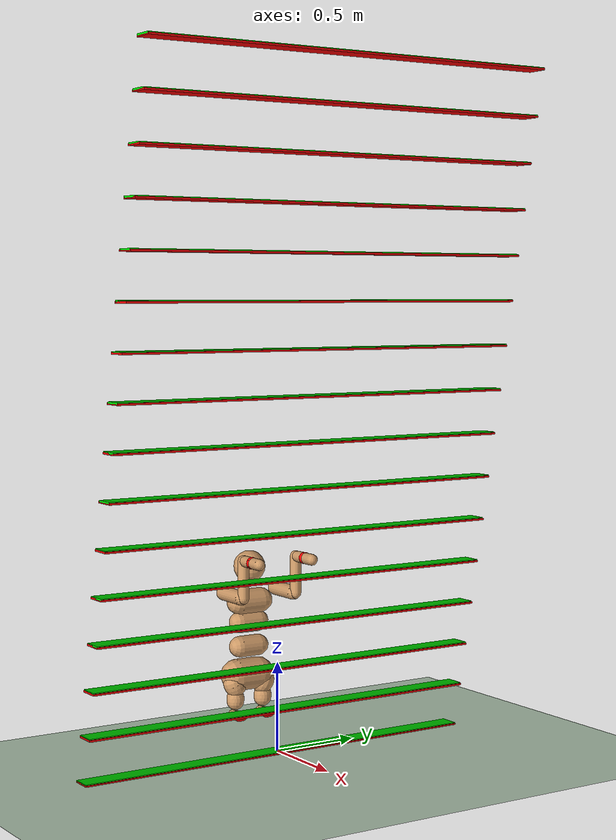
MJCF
<?xml version='1.0' encoding='utf-8'?>
<mujoco model="humanoid">
	<compiler angle="degree" inertiafromgeom="true" />
	<default>
		<joint armature="1" damping="1" limited="true" />
		<geom conaffinity="1" condim="1" contype="1" margin="0.001" material="geom" rgba="0.8 0.6 .4 1" />
		<motor ctrllimited="true" ctrlrange="-.4 .4" />
	</default>
	<option integrator="RK4" iterations="50" solver="PGS" timestep="0.003" gravity="0 0 -9.81" />
	<size nkey="5" nuser_geom="1" />
	<visual>
		<map fogend="5" fogstart="3" />
	</visual>
	<asset>
		<texture builtin="gradient" height="100" rgb1=".4 .5 .6" rgb2="0 0 0" type="skybox" width="100" />
		<texture builtin="flat" height="1278" mark="cross" markrgb="1 1 1" name="texgeom" random="0.01" rgb1="0.8 0.6 0.4" rgb2="0.8 0.6 0.4" type="cube" width="127" />
		<texture builtin="checker" height="100" name="texplane" random="0.01" rgb1="0 0 0" rgb2="0.8 0.8 0.8" type="2d" width="100" />
		<material name="MatPlane" reflectance="0.5" shininess="1" specular="1" texrepeat="60 60" texture="texplane" />
		<material name="geom" texture="texgeom" texuniform="true" />
	</asset>
	<worldbody>
		<light cutoff="100" diffuse="1 1 1" dir="-0 0 -1.3" directional="true" exponent="1" pos="0 0 1.3" specular=".1 .1 .1" />
		<camera name="track_3" mode="fixed" pos="6.5 0 11.5" xyaxes="1 0 0 0 1 0" />
		<camera name="staris_camera" mode="fixed" pos="-1 -6 2.6" xyaxes="0.88 -0.5 0 0.1 0.1 0.99" />
		<geom condim="3" friction="1 .1 .1" material="MatPlane" name="flatfloor" pos="0 0 0" rgba="0.8 0.9 0.8 1" size="20 20 2" type="plane" />
		<geom name="ladder1" type="box" size="0.054 1.2 0.005" pos="0.0 0 0.0025" rgba="0 .9 0 1" condim="3" friction="1 .1 .1" />
		<geom name="bottom1" type="box" size="0.06 1.2 0.005" pos="0.0 0 -0.0025" rgba="0.9 0 0 1" condim="3" friction="1 .1 .1" />
		<geom name="ladder2" type="box" size="0.054 1.2 0.005" pos="0.05 0 0.2525" rgba="0 .9 0 1" condim="3" friction="1 .1 .1" />
		<geom name="bottom2" type="box" size="0.06 1.2 0.005" pos="0.05 0 0.2475" rgba="0.9 0 0 1" condim="3" friction="1 .1 .1" />
		<geom name="ladder3" type="box" size="0.054 1.2 0.005" pos="0.1 0 0.5025" rgba="0 .9 0 1" condim="3" friction="1 .1 .1" />
		<geom name="bottom3" type="box" size="0.06 1.2 0.005" pos="0.1 0 0.4975" rgba="0.9 0 0 1" condim="3" friction="1 .1 .1" />
		<geom name="ladder4" type="box" size="0.054 1.2 0.005" pos="0.15 0 0.7525" rgba="0 .9 0 1" condim="3" friction="1 .1 .1" />
		<geom name="bottom4" type="box" size="0.06 1.2 0.005" pos="0.15 0 0.7475" rgba="0.9 0 0 1" condim="3" friction="1 .1 .1" />
		<geom name="ladder5" type="box" size="0.054 1.2 0.005" pos="0.2 0 1.0025" rgba="0 .9 0 1" condim="3" friction="1 .1 .1" />
		<geom name="bottom5" type="box" size="0.06 1.2 0.005" pos="0.2 0 0.9975" rgba="0.9 0 0 1" condim="3" friction="1 .1 .1" />
		<geom name="ladder6" type="box" size="0.054 1.2 0.005" pos="0.25 0 1.2525" rgba="0 .9 0 1" condim="3" friction="1 .1 .1" />
		<geom name="bottom6" type="box" size="0.06 1.2 0.005" pos="0.25 0 1.2475" rgba="0.9 0 0 1" condim="3" friction="1 .1 .1" />
		<geom name="ladder7" type="box" size="0.054 1.2 0.005" pos="0.3 0 1.5025" rgba="0 .9 0 1" condim="3" friction="1 .1 .1" />
		<geom name="bottom7" type="box" size="0.06 1.2 0.005" pos="0.3 0 1.4975" rgba="0.9 0 0 1" condim="3" friction="1 .1 .1" />
		<geom name="ladder8" type="box" size="0.054 1.2 0.005" pos="0.35 0 1.7525" rgba="0 .9 0 1" condim="3" friction="1 .1 .1" />
		<geom name="bottom8" type="box" size="0.06 1.2 0.005" pos="0.35 0 1.7475" rgba="0.9 0 0 1" condim="3" friction="1 .1 .1" />
		<geom name="ladder9" type="box" size="0.054 1.2 0.005" pos="0.4 0 2.0025" rgba="0 .9 0 1" condim="3" friction="1 .1 .1" />
		<geom name="bottom9" type="box" size="0.06 1.2 0.005" pos="0.4 0 1.9975" rgba="0.9 0 0 1" condim="3" friction="1 .1 .1" />
		<geom name="ladder10" type="box" size="0.054 1.2 0.005" pos="0.45 0 2.2525" rgba="0 .9 0 1" condim="3" friction="1 .1 .1" />
		<geom name="bottom10" type="box" size="0.06 1.2 0.005" pos="0.45 0 2.2475" rgba="0.9 0 0 1" condim="3" friction="1 .1 .1" />
		<geom name="ladder11" type="box" size="0.054 1.2 0.005" pos="0.5 0 2.5025" rgba="0 .9 0 1" condim="3" friction="1 .1 .1" />
		<geom name="bottom11" type="box" size="0.06 1.2 0.005" pos="0.5 0 2.4975" rgba="0.9 0 0 1" condim="3" friction="1 .1 .1" />
		<geom name="ladder12" type="box" size="0.054 1.2 0.005" pos="0.55 0 2.7525" rgba="0 .9 0 1" condim="3" friction="1 .1 .1" />
		<geom name="bottom12" type="box" size="0.06 1.2 0.005" pos="0.55 0 2.7475" rgba="0.9 0 0 1" condim="3" friction="1 .1 .1" />
		<geom name="ladder13" type="box" size="0.054 1.2 0.005" pos="0.6 0 3.0025" rgba="0 .9 0 1" condim="3" friction="1 .1 .1" />
		<geom name="bottom13" type="box" size="0.06 1.2 0.005" pos="0.6 0 2.9975" rgba="0.9 0 0 1" condim="3" friction="1 .1 .1" />
		<geom name="ladder14" type="box" size="0.054 1.2 0.005" pos="0.65 0 3.2525" rgba="0 .9 0 1" condim="3" friction="1 .1 .1" />
		<geom name="bottom14" type="box" size="0.06 1.2 0.005" pos="0.65 0 3.2475" rgba="0.9 0 0 1" condim="3" friction="1 .1 .1" />
		<geom name="ladder15" type="box" size="0.054 1.2 0.005" pos="0.7 0 3.5025" rgba="0 .9 0 1" condim="3" friction="1 .1 .1" />
		<geom name="bottom15" type="box" size="0.06 1.2 0.005" pos="0.7 0 3.4975" rgba="0.9 0 0 1" condim="3" friction="1 .1 .1" />
		<geom name="ladder16" type="box" size="0.054 1.2 0.005" pos="0.75 0 3.7525" rgba="0 .9 0 1" condim="3" friction="1 .1 .1" />
		<geom name="bottom16" type="box" size="0.06 1.2 0.005" pos="0.75 0 3.7475" rgba="0.9 0 0 1" condim="3" friction="1 .1 .1" />
		<body name="torso" pos="-0.3 0 0.8">
			<camera name="track" mode="trackcom" pos="0 -4 0" xyaxes="1 0 0 0 0 1" />
			<camera name="track_2" mode="trackcom" pos="0 -6 0" xyaxes="1 0 0 0 0 1" />
			<joint name="root" type="free" armature="0" limited="false" pos="0 0 0" stiffness="0" damping="0" />
			<geom name="torso_geom" type="capsule" size="0.07" fromto="0 -0.07 0 0 0.07 0" />
			<geom name="head_geom" type="sphere" size="0.09" pos="0 0 0.198" user="258" />
			<geom name="uwaist_geom" type="capsule" size="0.06" fromto="-0.01 -0.06 -0.12 -0.01 0.06 -0.12" />
			<body name="lwaist" pos="-.01 0 -0.26" quat="1.000 0 -0.002 0">
				<geom name="lwaist_geom" type="capsule" size="0.06" fromto="0 -0.06 0 0 0.06 0" />
				<joint name="abdomen_z" type="hinge" armature="0.02" axis="0 0 1" pos="0 0 0.065" range="-45 45" stiffness="20" damping="5" />
				<joint name="abdomen_y" type="hinge" armature="0.02" axis="0 1 0" pos="0 0 0.065" range="-75 30" stiffness="10" damping="5" />
				<body name="pelvis" pos="0 0 -0.165" quat="1.000 0 -0.002 0">
					<joint name="abdomen_x" type="hinge" armature="0.02" axis="1 0 0" pos="0 0 0.1" range="-35 35" stiffness="10" damping="5" />
					<geom name="pelvis_geom" type="capsule" size="0.09" fromto="-0.02 -0.07 0 -0.02 0.07 0" />
					<body name="right_thigh" pos="0 -0.1 -0.04">
						<joint name="right_hip_x" type="hinge" armature="0.01" axis="1 0 0" pos="0 0 0" range="-25 5" stiffness="10" damping="5" />
						<joint name="right_hip_z" type="hinge" armature="0.01" axis="0 0 1" pos="0 0 0" range="-60 35" stiffness="10" damping="5" />
						<joint name="right_hip_y" type="hinge" armature="0.01" axis="0 1 0" pos="0 0 0" range="-110 20" stiffness="20" damping="5" />
						<geom name="right_thigh_geom" type="capsule" size="0.06" fromto="0 0 0 0 0.01 -0.02" />
						<body name="right_shin" pos="0 0.01 -0.083">
							<joint name="right_knee" type="hinge" armature="0.006" axis="0 -1 0" pos="0 0 0.02" range="-160 -2" />
							<geom name="right_shin_geom" type="capsule" size="0.05" fromto="0 0 0 0 0 -0.02" />
							<body name="right_foot" pos="0 0 -0.1">
								<joint name="right_ankle" type="hinge" armature="0.006" axis="0 1 0" pos="0 0 0" range="-45 25" />
								<geom name="right_foot_geom_1" type="capsule" size="0.025" fromto="-0.03 0 0 0.049221445499325625 0.011133848076805236 0" />
								<geom name="right_foot_geom_2" type="capsule" size="0.025" fromto="-0.03 0 0 0.049221445499325625 -0.011133848076805236 0" />
								<geom name="right_foot_sensor_geom" type="capsule" size="0.0252" fromto="0.05912412618674133 -0.01252557908640589 0 0.05912412618674133 0.01252557908640589 0" rgba="1 0 0 1" />
							</body>
						</body>
					</body>
					<body name="left_thigh" pos="0 0.1 -0.04">
						<joint name="left_hip_x" type="hinge" armature="0.01" axis="-1 0 0" pos="0 0 0" range="-25 5" stiffness="10" damping="5" />
						<joint name="left_hip_z" type="hinge" armature="0.01" axis="0 0 -1" pos="0 0 0" range="-60 35" stiffness="10" damping="5" />
						<joint name="left_hip_y" type="hinge" armature="0.01" axis="0 1 0" pos="0 0 0" range="-110 20" stiffness="20" damping="5" />
						<geom name="left_thigh_geom" type="capsule" size="0.06" fromto="0 0 0 0 -0.01 -0.02" />
						<body name="left_shin" pos="0 -0.01 -0.083">
							<joint name="left_knee" type="hinge" armature="0.006" axis="0 -1 0" pos="0 0 0.02" range="-160 -2" />
							<geom name="left_shin_geom" type="capsule" size="0.05" fromto="0 0 0 0 0 -0.02" />
							<body name="left_foot" pos="0 0 -0.1">
								<joint name="left_ankle" type="hinge" armature="0.006" axis="0 1 0" pos="0 0 0" range="-45 25" />
								<geom name="left_foot_geom_1" type="capsule" size="0.025" fromto="-0.03 0 0 0.049221445499325625 0.011133848076805236 0" />
								<geom name="left_foot_geom_2" type="capsule" size="0.025" fromto="-0.03 0 0 0.049221445499325625 -0.011133848076805236 0" />
								<geom name="left_foot_sensor_geom" type="capsule" size="0.0252" fromto="0.05912412618674133 -0.01252557908640589 0 0.05912412618674133 0.01252557908640589 0" rgba="1 0 0 1" />
							</body>
						</body>
					</body>
				</body>
			</body>
			<body name="right_upper_arm" pos="0 -0.17 0.06">
				<joint name="right_shoulder1" type="hinge" armature="0.0068" axis="0 1 0" pos="0 0 0" range="-95 80" stiffness="1" />
				<joint name="right_shoulder2" type="hinge" armature="0.0051" axis="0 0 1" pos="0 0 0" range="-85 30" stiffness="1" />
				<geom name="right_upper_arm_geom" type="capsule" size="0.04" fromto="0 0 0 0.2 0 0" />
				<body name="right_lower_arm" pos="0.22 0 0">
					<joint name="right_elbow" type="hinge" armature="0.0028" axis="0 1 0" pos="0 0 0" range="-50 90" stiffness="0" />
					<geom name="right_lower_arm_geom" type="capsule" size="0.031" fromto="0 0 0 0 0 0.21" />
					<body name="right_hand" pos="0 0 0.21">
						<geom name="right_hand_geom" type="capsule" size="0.031" fromto="0.02 0 0 0.16999999999999998 0 0" />
						<geom name="right_hand_sensor_geom" type="capsule" size="0.033" fromto="0.093 0 0 0.097 0 0" rgba="1 0 0 1" />
						<joint name="right_wrist" type="hinge" armature="0.0028" axis="0 1 0" pos="0 0 0" range="-80 20" stiffness="0" />
					</body>
				</body>
			</body>
			<body name="left_upper_arm" pos="0 0.17 0.06">
				<joint name="left_shoulder1" type="hinge" armature="0.0068" axis="0 1 0" pos="0 0 0" range="-95 80" stiffness="1" />
				<joint name="left_shoulder2" type="hinge" armature="0.0051" axis="0 0 1" pos="0 0 0" range="-30 85" stiffness="1" />
				<geom name="left_upper_arm_geom" type="capsule" size="0.04" fromto="0 0 0 0.2 0 0" />
				<body name="left_lower_arm" pos="0.22 0 0">
					<joint name="left_elbow" type="hinge" armature="0.0028" axis="0 1 0" pos="0 0 0" range="-50 90" stiffness="0" />
					<geom name="left_lower_arm_geom" type="capsule" size="0.031" fromto="0 0 0 0 0 0.21" />
					<body name="left_hand" pos="0 0 0.21">
						<geom name="left_hand_geom" type="capsule" size="0.031" fromto="0.02 0 0 0.16999999999999998 0 0" />
						<joint name="left_wrist" type="hinge" armature="0.0028" axis="0 1 0" pos="0 0 0" range="-80 20" stiffness="0" />
						<geom name="left_hand_sensor_geom" type="capsule" size="0.033" fromto="0.093 0 0 0.097 0 0" rgba="1 0 0 1" />
					</body>
				</body>
			</body>
		</body>
	</worldbody>
	<tendon>
		<fixed name="left_hipknee">
			<joint coef="-1" joint="left_hip_y" />
			<joint coef="1" joint="left_knee" />
		</fixed>
		<fixed name="right_hipknee">
			<joint coef="-1" joint="right_hip_y" />
			<joint coef="1" joint="right_knee" />
		</fixed>
	</tendon>
	<actuator>
		<motor gear="100" joint="abdomen_y" name="abdomen_y" />
		<motor gear="100" joint="abdomen_z" name="abdomen_z" />
		<motor gear="100" joint="abdomen_x" name="abdomen_x" />
		<motor gear="100" joint="right_hip_x" name="right_hip_x" />
		<motor gear="100" joint="right_hip_z" name="right_hip_z" />
		<motor gear="300" joint="right_hip_y" name="right_hip_y" />
		<motor gear="200" joint="right_knee" name="right_knee" />
		<motor gear="50" joint="right_ankle" name="right_ankle" />
		<motor gear="100" joint="left_hip_x" name="left_hip_x" />
		<motor gear="100" joint="left_hip_z" name="left_hip_z" />
		<motor gear="300" joint="left_hip_y" name="left_hip_y" />
		<motor gear="200" joint="left_knee" name="left_knee" />
		<motor gear="50" joint="left_ankle" name="left_ankle" />
		<motor gear="25" joint="right_shoulder1" name="right_shoulder1" />
		<motor gear="25" joint="right_shoulder2" name="right_shoulder2" />
		<motor gear="25" joint="right_elbow" name="right_elbow" />
		<motor gear="25" joint="right_wrist" name="right_wrist" />
		<motor gear="25" joint="left_shoulder1" name="left_shoulder1" />
		<motor gear="25" joint="left_shoulder2" name="left_shoulder2" />
		<motor gear="25" joint="left_elbow" name="left_elbow" />
		<motor gear="25" joint="left_wrist" name="left_wrist" />
	</actuator>
</mujoco>
